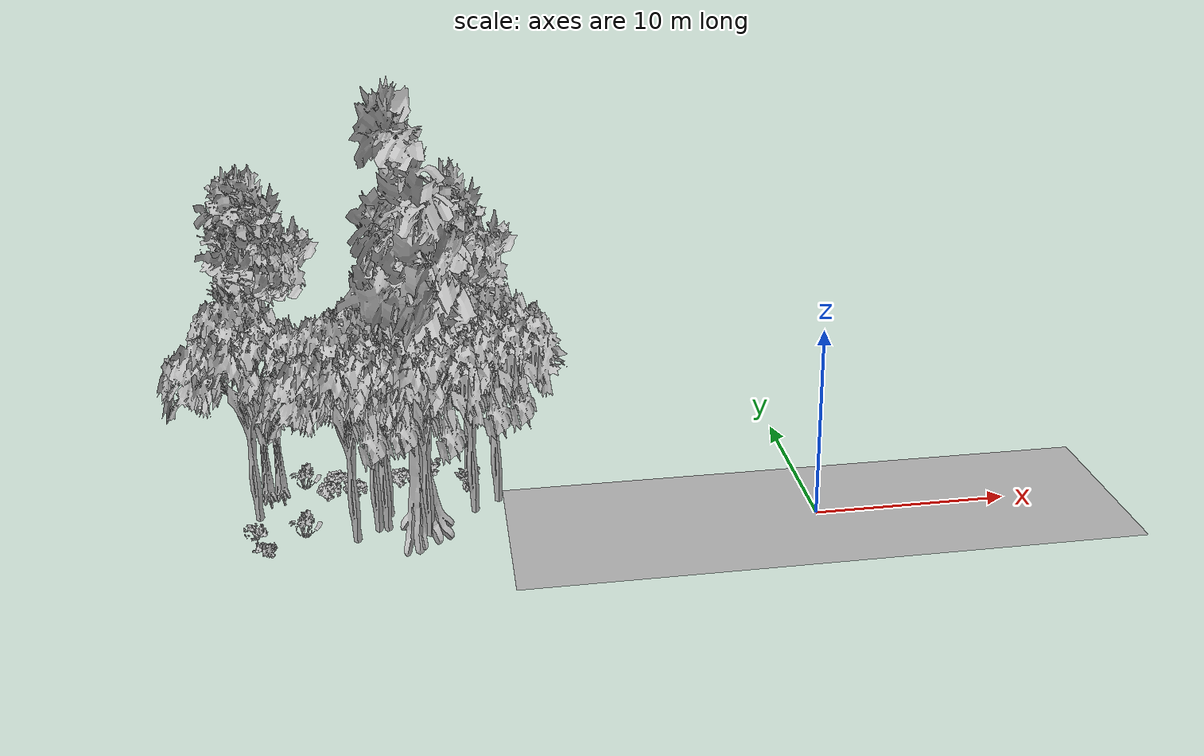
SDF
<sdf version="1.7">
 <world name="default">
  <model name="ground_plane">
   <static>1</static>
   <link name="link">
    <collision name="collision">
     <geometry><plane><normal>0 0 1</normal><size>100 100</size></plane></geometry>
     <surface><contact><ode><min_depth>0.01</min_depth><max_vel>0</max_vel></ode></contact></surface>
    </collision>
    <visual name="grass">
     <cast_shadows>0</cast_shadows>
     <geometry>
      <mesh>
       <scale>0.5814285714285714 0.18142857142857144 0.1</scale>
       <uri>file://grass_plane/meshes/grass_plane.dae</uri>
      </mesh>
     </geometry>
    </visual>
   </link>
  </model>
  <model name="Tree 11">
   <static>1</static>
   <pose>-27.164295356093064 7.0495500188012485 0 1.57079 -0 0</pose>
   <link name="link">
    <collision name="collision">
     <geometry><mesh><scale>3.5 5 3.5</scale><uri>model://tree_9/meshes/tree_9.obj</uri></mesh></geometry>
    </collision>
    <visual name="visual">
     <geometry><mesh><scale>3.5 5 3.5</scale><uri>model://tree_9/meshes/tree_9.obj</uri></mesh></geometry>
    </visual>
   </link>
  </model>
  <model name="Tree 137">
   <static>1</static>
   <pose>-17.285453652377583 2.95959257164834 0 1.57079 -0 0</pose>
   <link name="link">
    <collision name="collision">
     <geometry><mesh><scale>3.5 5 3.5</scale><uri>model://tree_2/meshes/tree_2.obj</uri></mesh></geometry>
    </collision>
    <visual name="visual">
     <geometry><mesh><scale>3.5 5 3.5</scale><uri>model://tree_2/meshes/tree_2.obj</uri></mesh></geometry>
    </visual>
   </link>
  </model>
  <model name="Tree 138">
   <static>1</static>
   <pose>-22.10563483745983 1.7325791237850297 0 1.57079 -0 0</pose>
   <link name="link">
    <collision name="collision">
     <geometry><mesh><scale>3.5 5 3.5</scale><uri>model://tree_2/meshes/tree_2.obj</uri></mesh></geometry>
    </collision>
    <visual name="visual">
     <geometry><mesh><scale>3.5 5 3.5</scale><uri>model://tree_2/meshes/tree_2.obj</uri></mesh></geometry>
    </visual>
   </link>
  </model>
  <model name="Tree 181">
   <static>1</static>
   <pose>-21.665209788959732 1.73873829753704 0 1.57079 -0 0</pose>
   <link name="link">
    <collision name="collision">
     <geometry><mesh><scale>3.5 5 3.5</scale><uri>model://tree_2/meshes/tree_2.obj</uri></mesh></geometry>
    </collision>
    <visual name="visual">
     <geometry><mesh><scale>3.5 5 3.5</scale><uri>model://tree_2/meshes/tree_2.obj</uri></mesh></geometry>
    </visual>
   </link>
  </model>
  <model name="Tree 182">
   <static>1</static>
   <pose>-23.153271755231465 0.8479807738496081 0 1.57079 -0 0</pose>
   <link name="link">
    <collision name="collision">
     <geometry><mesh><scale>3.5 5 3.5</scale><uri>model://tree_2/meshes/tree_2.obj</uri></mesh></geometry>
    </collision>
    <visual name="visual">
     <geometry><mesh><scale>3.5 5 3.5</scale><uri>model://tree_2/meshes/tree_2.obj</uri></mesh></geometry>
    </visual>
   </link>
  </model>
  <model name="Tree 185">
   <static>1</static>
   <pose>-27.813648374147945 6.812753503248924 0 1.57079 -0 0</pose>
   <link name="link">
    <collision name="collision">
     <geometry><mesh><scale>3.5 5 3.5</scale><uri>model://tree_9/meshes/tree_9.obj</uri></mesh></geometry>
    </collision>
    <visual name="visual">
     <geometry><mesh><scale>3.5 5 3.5</scale><uri>model://tree_9/meshes/tree_9.obj</uri></mesh></geometry>
    </visual>
   </link>
  </model>
  <model name="Tree 277">
   <static>1</static>
   <pose>-21.584436785961824 3.1519874504747243 0 1.57079 -0 0</pose>
   <link name="link">
    <collision name="collision">
     <geometry><mesh><scale>3.5 5 3.5</scale><uri>model://tree_2/meshes/tree_2.obj</uri></mesh></geometry>
    </collision>
    <visual name="visual">
     <geometry><mesh><scale>3.5 5 3.5</scale><uri>model://tree_2/meshes/tree_2.obj</uri></mesh></geometry>
    </visual>
   </link>
  </model>
  <model name="Tree 331">
   <static>1</static>
   <pose>-19.829978869601955 1.3967836467679753 0 1.57079 -0 0</pose>
   <link name="link">
    <collision name="collision">
     <geometry><mesh><scale>3.5 5 3.5</scale><uri>model://tree_4/meshes/tree_4.obj</uri></mesh></geometry>
    </collision>
    <visual name="visual">
     <geometry><mesh><scale>3.5 5 3.5</scale><uri>model://tree_4/meshes/tree_4.obj</uri></mesh></geometry>
    </visual>
   </link>
  </model>
  <model name="Tree 340">
   <static>1</static>
   <pose>-16.03654168101565 3.9155857531021354 0 1.57079 -0 0</pose>
   <link name="link">
    <collision name="collision">
     <geometry><mesh><scale>3.5 5 3.5</scale><uri>model://tree_2/meshes/tree_2.obj</uri></mesh></geometry>
    </collision>
    <visual name="visual">
     <geometry><mesh><scale>3.5 5 3.5</scale><uri>model://tree_2/meshes/tree_2.obj</uri></mesh></geometry>
    </visual>
   </link>
  </model>
  <model name="Tree 378">
   <static>1</static>
   <pose>-19.57359751385165 0.865065887381542 0 1.57079 -0 0</pose>
   <link name="link">
    <collision name="collision">
     <geometry><mesh><scale>3.5 5 3.5</scale><uri>model://tree_2/meshes/tree_2.obj</uri></mesh></geometry>
    </collision>
    <visual name="visual">
     <geometry><mesh><scale>3.5 5 3.5</scale><uri>model://tree_2/meshes/tree_2.obj</uri></mesh></geometry>
    </visual>
   </link>
  </model>
  <model name="Tree 399">
   <static>1</static>
   <pose>-28.07307993947739 3.793186580166058 0 1.57079 -0 0</pose>
   <link name="link">
    <collision name="collision">
     <geometry><mesh><scale>3.5 5 3.5</scale><uri>model://tree_2/meshes/tree_2.obj</uri></mesh></geometry>
    </collision>
    <visual name="visual">
     <geometry><mesh><scale>3.5 5 3.5</scale><uri>model://tree_2/meshes/tree_2.obj</uri></mesh></geometry>
    </visual>
   </link>
  </model>
  <model name="Tree 424">
   <static>1</static>
   <pose>-17.295150281078296 6.538679986089615 0 1.57079 -0 0</pose>
   <link name="link">
    <collision name="collision">
     <geometry><mesh><scale>3.5 5 3.5</scale><uri>model://tree_9/meshes/tree_9.obj</uri></mesh></geometry>
    </collision>
    <visual name="visual">
     <geometry><mesh><scale>3.5 5 3.5</scale><uri>model://tree_9/meshes/tree_9.obj</uri></mesh></geometry>
    </visual>
   </link>
  </model>
  <model name="Bush 39">
   <static>1</static>
   <pose>-24.23968270025676 6.757349978029257 0 1.57079 -0 0</pose>
   <link name="link">
    <collision name="collision">
     <geometry><mesh><scale>2 2 2</scale><uri>model://bush_3/meshes/bush_3.obj</uri></mesh></geometry>
     <surface><contact><collide_without_contact>false</collide_without_contact></contact></surface>
    </collision>
    <visual name="visual">
     <geometry><mesh><scale>2 2 2</scale><uri>model://bush_3/meshes/bush_3.obj</uri></mesh></geometry>
    </visual>
   </link>
  </model>
  <model name="Bush 80">
   <static>1</static>
   <pose>-19.310869695234384 6.560779997279152 0 1.57079 -0 0</pose>
   <link name="link">
    <collision name="collision">
     <geometry><mesh><scale>2 2 2</scale><uri>model://bush_0/meshes/bush_0.obj</uri></mesh></geometry>
     <surface><contact><collide_without_contact>false</collide_without_contact></contact></surface>
    </collision>
    <visual name="visual">
     <geometry><mesh><scale>2 2 2</scale><uri>model://bush_0/meshes/bush_0.obj</uri></mesh></geometry>
    </visual>
   </link>
  </model>
  <model name="Bush 135">
   <static>1</static>
   <pose>-25.873265169668755 6.782225949900276 0 1.57079 -0 0</pose>
   <link name="link">
    <collision name="collision">
     <geometry><mesh><scale>2 2 2</scale><uri>model://bush_4/meshes/bush_4.obj</uri></mesh></geometry>
     <surface><contact><collide_without_contact>false</collide_without_contact></contact></surface>
    </collision>
    <visual name="visual">
     <geometry><mesh><scale>2 2 2</scale><uri>model://bush_4/meshes/bush_4.obj</uri></mesh></geometry>
    </visual>
   </link>
  </model>
  <model name="Bush 207">
   <static>1</static>
   <pose>-20.920492027741965 6.496156901125321 0 1.57079 -0 0</pose>
   <link name="link">
    <collision name="collision">
     <geometry><mesh><scale>2 2 2</scale><uri>model://bush_3/meshes/bush_3.obj</uri></mesh></geometry>
     <surface><contact><collide_without_contact>false</collide_without_contact></contact></surface>
    </collision>
    <visual name="visual">
     <geometry><mesh><scale>2 2 2</scale><uri>model://bush_3/meshes/bush_3.obj</uri></mesh></geometry>
    </visual>
   </link>
  </model>
  <model name="Bush 213">
   <static>1</static>
   <pose>-23.23197747165308 5.582928220391928 0 1.57079 -0 0</pose>
   <link name="link">
    <collision name="collision">
     <geometry><mesh><scale>2 2 2</scale><uri>model://bush_3/meshes/bush_3.obj</uri></mesh></geometry>
     <surface><contact><collide_without_contact>false</collide_without_contact></contact></surface>
    </collision>
    <visual name="visual">
     <geometry><mesh><scale>2 2 2</scale><uri>model://bush_3/meshes/bush_3.obj</uri></mesh></geometry>
    </visual>
   </link>
  </model>
  <model name="Bush 215">
   <static>1</static>
   <pose>-17.28639403436345 5.231694069166579 0 1.57079 -0 0</pose>
   <link name="link">
    <collision name="collision">
     <geometry><mesh><scale>2 2 2</scale><uri>model://bush_0/meshes/bush_0.obj</uri></mesh></geometry>
     <surface><contact><collide_without_contact>false</collide_without_contact></contact></surface>
    </collision>
    <visual name="visual">
     <geometry><mesh><scale>2 2 2</scale><uri>model://bush_0/meshes/bush_0.obj</uri></mesh></geometry>
    </visual>
   </link>
  </model>
  <model name="Bush 229">
   <static>1</static>
   <pose>-25.59343270969105 1.6574205631230114 0 1.57079 -0 0</pose>
   <link name="link">
    <collision name="collision">
     <geometry><mesh><scale>2 2 2</scale><uri>model://bush_4/meshes/bush_4.obj</uri></mesh></geometry>
     <surface><contact><collide_without_contact>false</collide_without_contact></contact></surface>
    </collision>
    <visual name="visual">
     <geometry><mesh><scale>2 2 2</scale><uri>model://bush_4/meshes/bush_4.obj</uri></mesh></geometry>
    </visual>
   </link>
  </model>
  <model name="Bush 272">
   <static>1</static>
   <pose>-24.577917556151338 5.577870191842617 0 1.57079 -0 0</pose>
   <link name="link">
    <collision name="collision">
     <geometry><mesh><scale>2 2 2</scale><uri>model://bush_3/meshes/bush_3.obj</uri></mesh></geometry>
     <surface><contact><collide_without_contact>false</collide_without_contact></contact></surface>
    </collision>
    <visual name="visual">
     <geometry><mesh><scale>2 2 2</scale><uri>model://bush_3/meshes/bush_3.obj</uri></mesh></geometry>
    </visual>
   </link>
  </model>
  <model name="Bush 318">
   <static>1</static>
   <pose>-27.459192926532072 0.5293284869178851 0 1.57079 -0 0</pose>
   <link name="link">
    <collision name="collision">
     <geometry><mesh><scale>2 2 2</scale><uri>model://bush_2/meshes/bush_2.obj</uri></mesh></geometry>
     <surface><contact><collide_without_contact>false</collide_without_contact></contact></surface>
    </collision>
    <visual name="visual">
     <geometry><mesh><scale>2 2 2</scale><uri>model://bush_2/meshes/bush_2.obj</uri></mesh></geometry>
    </visual>
   </link>
  </model>
  <model name="Bush 334">
   <static>1</static>
   <pose>-27.80679277436681 0.7340989525243806 0 1.57079 -0 0</pose>
   <link name="link">
    <collision name="collision">
     <geometry><mesh><scale>2 2 2</scale><uri>model://bush_5/meshes/bush_5.obj</uri></mesh></geometry>
     <surface><contact><collide_without_contact>false</collide_without_contact></contact></surface>
    </collision>
    <visual name="visual">
     <geometry><mesh><scale>2 2 2</scale><uri>model://bush_5/meshes/bush_5.obj</uri></mesh></geometry>
    </visual>
   </link>
  </model>
 </world>
</sdf>
